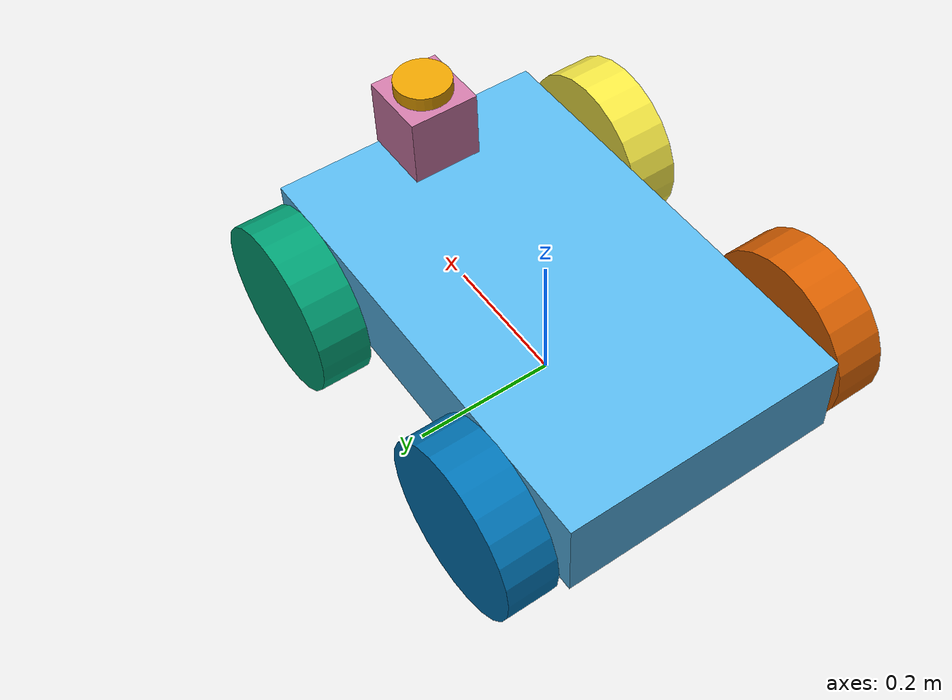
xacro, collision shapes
<?xml version='1.0'?>

<robot name="avular_origin_one" xmlns:xacro="http://ros.org/wiki/xacro" xmlns:ignition="http://sdformat.org/schemas/root.xsd">

  <xacro:arg name="drive_configuration" default="skid_steer_drive"/>
  <xacro:arg name="robot_namespace" default="robot"/>

  <xacro:property name="var" value="$(arg drive_configuration)"/>
  <xacro:property name="ns" value="$(arg robot_namespace)"/>
  <xacro:if value="${var == 'skid_steer_drive'}">
    <xacro:property name="trackWidth" value="0.500"/>
    <xacro:property name="wheelbase" value="0.410"/>
    <xacro:property name="wheelRadius" value="0.120"/>
    <xacro:property name="groundClearance" value="0.064"/>
    <!-- wheelMeshFileA refer to the mesh file used to visualize front left & rear right wheel  -->
    <xacro:property name="wheelMeshFileA" value="package://origin_one_description/urdf/meshes/wheel.obj"/>
    <!-- wheelMeshFileB refer to the mesh file used to visualize front right & rear left wheel  -->
    <xacro:property name="wheelMeshFileB" value="package://origin_one_description/urdf/meshes/wheel.obj"/>
  </xacro:if>
  <xacro:if value="${var == 'big_skid_steer_drive'}">
    <xacro:property name="trackWidth" value="0.530"/>
    <xacro:property name="wheelbase" value="0.410"/>
    <xacro:property name="wheelRadius" value="0.165"/>
    <xacro:property name="groundClearance" value="0.109"/>
    <!-- wheelMeshFileA refer to the mesh file used to visualize front left & rear right wheel  -->
    <xacro:property name="wheelMeshFileA" value="package://origin_one_description/urdf/meshes/wheel_big.obj"/>
    <!-- wheelMeshFileB refer to the mesh file used to visualize front right & rear left wheel  -->
    <xacro:property name="wheelMeshFileB" value="package://origin_one_description/urdf/meshes/wheel_big.obj"/>
  </xacro:if>
  <xacro:if value="${var == 'elevated_skid_steer_drive'}">
    <xacro:property name="trackWidth" value="0.530"/>
    <xacro:property name="wheelbase" value="0.410"/>
    <xacro:property name="wheelRadius" value="0.165"/>
    <xacro:property name="groundClearance" value="0.109"/>
    <!-- wheelMeshFileA refer to the mesh file used to visualize front left & rear right wheel  -->
    <xacro:property name="wheelMeshFileA" value="package://origin_one_description/urdf/meshes/wheel_big.obj"/>
    <!-- wheelMeshFileB refer to the mesh file used to visualize front right & rear left wheel  -->
    <xacro:property name="wheelMeshFileB" value="package://origin_one_description/urdf/meshes/wheel_big.obj"/>
  </xacro:if>
  <xacro:if value="${var == 'mecanum_drive'}">
    <xacro:property name="trackWidth" value="0.475"/>
    <xacro:property name="wheelbase" value="0.410"/>
    <xacro:property name="wheelRadius" value="0.1015"/>
    <xacro:property name="groundClearance" value="0.0455"/>
    <!-- wheelMeshFileA refer to the mesh file used to visualize front left & rear right wheel  -->
    <xacro:property name="wheelMeshFileA" value="package://origin_one_description/urdf/meshes/wheel_mecanumA.obj"/>
    <!-- wheelMeshFileB refer to the mesh file used to visualize front right & rear left wheel  -->
    <xacro:property name="wheelMeshFileB" value="package://origin_one_description/urdf/meshes/wheel_mecanumB.obj"/>
  </xacro:if>

  <gazebo>
    <static>false</static>
    <!-- Sensors & NavSat system plugins are loaded at world level (baylands.world) -->
  </gazebo>

  <link name='base_link' />

  <link name='main_body'>
    <inertial>
      <mass value="21.0"/>
      <inertia ixx="0.4" ixy="0.0" ixz="0.0" iyy="0.77" iyz="0.0" izz="1.01"/>
    </inertial>
    <collision name='collision'>
      <origin xyz="0 0 0.07" rpy="0 0 0.0"/>
      <geometry>
        <box size=".65 .4 .125"/>
      </geometry>
    </collision>
    <visual name='visual'>
      <origin xyz="0 0 0" rpy="0 0 0.0"/>
      <geometry>
        <mesh filename="package://origin_one_description/urdf/meshes/body.obj"
          scale="0.001 0.001 0.001" />
      </geometry>
    </visual>
  </link>

  <link name="left_front_wheel">
    <inertial>
      <mass value="1"/>
      <inertia ixx="0.01" ixy="0.0" ixz="0.0" iyy="0.01" iyz="0.0" izz="0.01"/>
    </inertial>
    <collision>
      <origin xyz="0 0 0.0" rpy="0 0 0"/>
      <geometry>
        <cylinder length=".07" radius="${wheelRadius}"/>
      </geometry>
    </collision>
    <visual>
      <origin xyz="0.0 0.0 0.0" rpy="0.0 1.5707 0.0"/>
      <geometry>
        <mesh filename="${wheelMeshFileA}"
          scale="0.001 0.001 0.001" />
      </geometry>
    </visual>
  </link>
  <gazebo reference="left_front_wheel">
    <collision>
      <surface>
        <friction>
          <xacro:if value="${var == 'skid_steer_drive'}">
            <ode>
              <mu>1</mu>
              <mu2>1</mu2>
              <slip1>0.001</slip1>
              <slip2>0</slip2>
              <fdir1>0 0 1</fdir1>
            </ode>
          </xacro:if>
          <xacro:if value="${var == 'mecanum_drive'}">
            <ode>
              <mu>1</mu>
              <mu2>0</mu2>
              <fdir1 ignition:expressed_in="base_link">1 -1 0</fdir1>
            </ode>
          </xacro:if>
          <xacro:if value="${var == 'big_skid_steer_drive'}">
            <ode>
              <mu>1</mu>
              <mu2>1</mu2>
              <slip1>0.001</slip1>
              <slip2>0</slip2>
              <fdir1>0 0 1</fdir1>
            </ode>
          </xacro:if>
          <xacro:if value="${var == 'elevated_skid_steer_drive'}">
            <ode>
              <mu>1</mu>
              <mu2>1</mu2>
              <slip1>0.001</slip1>
              <slip2>0</slip2>
              <fdir1>0 0 1</fdir1>
            </ode>
          </xacro:if>
          <bullet>
            <friction>1</friction>
            <friction2>1</friction2>
            <rolling_friction>0.1</rolling_friction>
          </bullet>
        </friction>
      </surface>
    </collision>
  </gazebo>

  <link name="right_front_wheel">
    <inertial>
      <mass value="1"/>
      <inertia ixx="0.01" ixy="0.0" ixz="0.0" iyy="0.01" iyz="0.0" izz="0.01"/>
    </inertial>
    <collision>
      <origin xyz="0 0 0.0" rpy="0 0 0"/>
      <geometry>
        <cylinder length=".07" radius="${wheelRadius}"/>
      </geometry>
    </collision>
    <visual>
      <origin xyz="0.0 0.0 0.0" rpy="0.0 -1.5707 0.0"/>
      <geometry>
        <mesh filename="${wheelMeshFileB}"
          scale="0.001 0.001 0.001" />
      </geometry>
    </visual>
  </link>
  <gazebo reference="right_front_wheel">
    <collision>
      <surface>
        <friction>
          <xacro:if value="${var == 'skid_steer_drive'}">
            <ode>
              <mu>1</mu>
              <mu2>1</mu2>
              <slip1>0.001</slip1>
              <slip2>0</slip2>
              <fdir1>0 0 1</fdir1>
            </ode>
          </xacro:if>
          <xacro:if value="${var == 'mecanum_drive'}">
            <ode>
              <mu>1</mu>
              <mu2>0</mu2>
              <fdir1 ignition:expressed_in="base_link">1 1 0</fdir1>
            </ode>
          </xacro:if>
          <xacro:if value="${var == 'big_skid_steer_drive'}">
            <ode>
              <mu>1</mu>
              <mu2>1</mu2>
              <slip1>0.001</slip1>
              <slip2>0</slip2>
              <fdir1>0 0 1</fdir1>
            </ode>
          </xacro:if>
          <xacro:if value="${var == 'elevated_skid_steer_drive'}">
            <ode>
              <mu>1</mu>
              <mu2>1</mu2>
              <slip1>0.001</slip1>
              <slip2>0</slip2>
              <fdir1>0 0 1</fdir1>
            </ode>
          </xacro:if>
          <bullet>
            <friction>1</friction>
            <friction2>1</friction2>
            <rolling_friction>0.1</rolling_friction>
          </bullet>
        </friction>
      </surface>
    </collision>
  </gazebo>

  <link name="left_rear_wheel">
    <inertial>
      <mass value="1"/>
      <inertia ixx="0.01" ixy="0.0" ixz="0.0" iyy="0.01" iyz="0.0" izz="0.01"/>
    </inertial>
    <collision>
      <origin xyz="0 0 0.0" rpy="0 0 0"/>
      <geometry>
        <cylinder length=".07" radius="${wheelRadius}"/>
      </geometry>
    </collision>
    <visual>
      <origin xyz="0.0 0.0 0.0" rpy="0.0 1.5707 0.0"/>
      <geometry>
        <mesh filename="${wheelMeshFileB}"
          scale="0.001 0.001 0.001" />
      </geometry>
    </visual>
  </link>
  <gazebo reference="left_rear_wheel">
    <collision>
      <surface>
        <friction>
          <xacro:if value="${var == 'skid_steer_drive'}">
            <ode>
              <mu>1</mu>
              <mu2>1</mu2>
              <slip1>0.001</slip1>
              <slip2>0</slip2>
              <fdir1>0 0 1</fdir1>
            </ode>
          </xacro:if>
          <xacro:if value="${var == 'mecanum_drive'}">
            <ode>
              <mu>1</mu>
              <mu2>0</mu2>
              <fdir1 ignition:expressed_in="base_link">1 1 0</fdir1>
            </ode>
          </xacro:if>
          <xacro:if value="${var == 'big_skid_steer_drive'}">
            <ode>
              <mu>1</mu>
              <mu2>1</mu2>
              <slip1>0.001</slip1>
              <slip2>0</slip2>
              <fdir1>0 0 1</fdir1>
            </ode>
          </xacro:if>
          <xacro:if value="${var == 'elevated_skid_steer_drive'}">
            <ode>
              <mu>1</mu>
              <mu2>1</mu2>
              <slip1>0.001</slip1>
              <slip2>0</slip2>
              <fdir1>0 0 1</fdir1>
            </ode>
          </xacro:if>
          <bullet>
            <friction>1</friction>
            <friction2>1</friction2>
            <rolling_friction>0.1</rolling_friction>
          </bullet>
        </friction>
      </surface>
    </collision>
  </gazebo>

  <link name="right_rear_wheel">
    <inertial>
      <mass value="1"/>
      <inertia ixx="0.01" ixy="0.0" ixz="0.0" iyy="0.01" iyz="0.0" izz="0.01"/>
    </inertial>
    <collision>
      <origin xyz="0 0 0.0" rpy="0 0 0"/>
      <geometry>
        <cylinder length=".07" radius="${wheelRadius}"/>
      </geometry>
    </collision>
    <visual>
      <origin xyz="0.0 0.0 0.0" rpy="0.0 -1.5707 0.0"/>
      <geometry>
        <mesh filename="${wheelMeshFileA}"
          scale="0.001 0.001 0.001" />
      </geometry>
    </visual>
  </link>
  <gazebo reference="right_rear_wheel">
    <collision>
      <surface>
        <friction>
          <xacro:if value="${var == 'skid_steer_drive'}">
            <ode>
              <mu>1</mu>
              <mu2>1</mu2>
              <slip1>0.001</slip1>
              <slip2>0</slip2>
              <fdir1>0 0 1</fdir1>
            </ode>
          </xacro:if>
          <xacro:if value="${var == 'mecanum_drive'}">
            <ode>
              <mu>1</mu>
              <mu2>0</mu2>
              <fdir1 ignition:expressed_in="base_link">1 -1 0</fdir1>
            </ode>
          </xacro:if>
          <xacro:if value="${var == 'big_skid_steer_drive'}">
            <ode>
              <mu>1</mu>
              <mu2>1</mu2>
              <slip1>0.001</slip1>
              <slip2>0</slip2>
              <fdir1>0 0 1</fdir1>
            </ode>
          </xacro:if>
          <xacro:if value="${var == 'elevated_skid_steer_drive'}">
            <ode>
              <mu>1</mu>
              <mu2>1</mu2>
              <slip1>0.001</slip1>
              <slip2>0</slip2>
              <fdir1>0 0 1</fdir1>
            </ode>
          </xacro:if>
          <bullet>
            <friction>1</friction>
            <friction2>1</friction2>
            <rolling_friction>0.1</rolling_friction>
          </bullet>
        </friction>
      </surface>
    </collision>
  </gazebo>

  <link name="ouster_base">
    <inertial>
      <mass value="1"/>
      <inertia ixx="0.001" ixy="0.0" ixz="0.0" iyy="0.001" iyz="0.0" izz="0.001"/>
    </inertial>
    <visual name="visual">
      <geometry>
        <mesh filename="package://origin_one_description/urdf/meshes/ouster.obj"
          scale="0.001 0.001 0.001" />
      </geometry>
    </visual>
    <collision name="collision-base">
      <origin xyz="0.0 0.0 0.0" rpy="0.0 0.0 0.0"/>
      <geometry>
        <box size="0.1 0.1 0.1"/>
      </geometry>
    </collision>
  </link>

  <link name="os_sensor" />

  <link name="lidar_link_gazebo">
    <inertial>
      <mass value="0.1"/>
      <inertia ixx="0.001" ixy="0.0" ixz="0.0" iyy="0.001" iyz="0.0" izz="0.001"/>
    </inertial>
    <collision name="collision-base">
      <origin xyz="0 0 0.0" rpy="0 0 0"/>
      <geometry>
        <cylinder length="0.07" radius="0.04"/>
      </geometry>
    </collision>
  </link>

  <gazebo reference="lidar_link_gazebo">
    <sensor name='ouster_lidar' type='gpu_lidar'>
      <topic>/model/${ns}/lidar</topic>
      <gz_frame_id>${ns}/lidar_link_gazebo</gz_frame_id>
      <!-- 20 Hz update rate (real Ouster OS1 supports 10/20 Hz). -->
      <update_rate>20</update_rate>
      <lidar>
        <scan>
          <horizontal>
            <samples>1024</samples>
            <resolution>1.0</resolution>
            <min_angle>-3.1415926</min_angle>
            <max_angle>3.1415926</max_angle>
          </horizontal>
          <vertical>
            <samples>64</samples>
            <resolution>1</resolution>
            <min_angle>-0.70</min_angle>
            <max_angle>0.087</max_angle>
          </vertical>
        </scan>
        <range>
          <min>0.08</min>
          <max>100.0</max>
          <resolution>0.01</resolution>
        </range>
        <noise type="gaussian">
          <mean>0.0</mean>
          <stddev>0.01</stddev>
        </noise>
      </lidar>
      <alwaysOn>1</alwaysOn>
      <!-- visualize: false saves GUI-side render budget; the cloud is still
           inspectable in RViz via /{name}/lidar/points. -->
      <visualize>false</visualize>
    </sensor>
  </gazebo>

  <link name="camera_link">
    <inertial>
      <mass value="0.035"/>
      <inertia ixx="0.001" ixy="0" ixz="0.0" iyy="0.001" iyz="0.0" izz="0.001"/>
    </inertial>
    <collision name="collision">
      <origin xyz="0 0.047 0" rpy="0 0 0"/>
      <geometry>
        <box size="0.008 0.13 0.022"/>
      </geometry>
    </collision>
  </link>

  <gazebo reference="camera_link">
    <sensor name="realsense_d435" type="rgbd_camera">
      <gz_frame_id>${ns}/camera_link</gz_frame_id>
      <topic>/model/${ns}/camera</topic>
      <update_rate>6</update_rate>
      <camera name="camera">
        <horizontal_fov>1.0472</horizontal_fov>
        <lens>
          <intrinsics>
            <!-- fx = fy = width / ( 2 * tan (hfov / 2 ) ) -->
            <fx>554.254691</fx>
            <fy>554.254691</fy>
            <!-- cx = ( width + 1 ) / 2 -->
            <cx>320.5</cx>
            <!-- cy = ( height + 1 ) / 2 -->
            <cy>240.5</cy>
            <s>0</s>
          </intrinsics>
        </lens>
        <distortion>
          <k1>0.0</k1>
          <k2>0.0</k2>
          <k3>0.0</k3>
          <p1>0.0</p1>
          <p2>0.0</p2>
          <center>0.5 0.5</center>
        </distortion>
        <image>
          <width>640</width>
          <height>480</height>
          <format>R8G8B8</format>
        </image>
        <clip>
          <near>0.02</near>
          <far>300</far>
        </clip>
        <depth_camera>
          <clip>
            <near>0.1</near>
            <far>10</far>
          </clip>
        </depth_camera>
        <noise type="gaussian">
          <mean>0</mean>
          <stddev>0.007</stddev>
        </noise>
      </camera>
    </sensor>
  </gazebo>

  <link name="gnss_link">
    <visual name="visual_pole">
      <geometry>
        <mesh filename="package://origin_one_description/urdf/meshes/antenna.obj"
          scale="0.001 0.001 0.001" />
      </geometry>
      <origin xyz="0.0 0 0.0" rpy="0 0 0"/>
      <geometry>
        <box size="0.03 0.03 0.1"/>
      </geometry>
    </visual>
  </link>

  <gazebo reference="gnss_link">
    <sensor name="navsat" type="navsat">
      <gz_frame_id>${ns}/gnss_link</gz_frame_id>
      <always_on>1</always_on>
      <update_rate>10</update_rate>
      <topic>/model/${ns}/navsat</topic>
      <!-- Obtained from http://sdformat.org/spec?ver=1.11&elem=sensor#sensor_gps -->
      <gps>
        <position_sensing>
          <horizontal>
            <!-- Noise in degrees: https://github.com/gazebosim/gz-sensors/issues/325 -->
            <noise type="gaussian">
              <mean>0.0</mean>
              <stddev>0.000</stddev>
            </noise>
          </horizontal>
          <vertical>
            <!-- Noise in degrees -->
            <noise type="gaussian">
              <mean>0.0</mean>
              <stddev>0.0001</stddev>
            </noise>
          </vertical>
        </position_sensing>
      </gps>
    </sensor>
  </gazebo>

  <link name="us_left_front_link">
  </link>

  <link name="us_center_front_link">
  </link>

  <link name="us_right_front_link">
  </link>

  <link name="us_left_rear_link">
  </link>

  <link name="us_center_rear_link">
  </link>

  <link name="us_right_rear_link">
  </link>

  <link name="imu_link">
  </link>

  <gazebo reference="imu_link">
    <sensor name="imu_sensor" type="imu">
      <gz_frame_id>${ns}/imu_link</gz_frame_id>
      <always_on>1</always_on>
      <update_rate>100</update_rate>
      <topic>/model/${ns}/imu</topic>
      <visualize>false</visualize>
      <imu>
        <angular_velocity>
          <x><noise type="gaussian"><mean>0.0</mean><stddev>0.0002</stddev></noise></x>
          <y><noise type="gaussian"><mean>0.0</mean><stddev>0.0002</stddev></noise></y>
          <z><noise type="gaussian"><mean>0.0</mean><stddev>0.0002</stddev></noise></z>
        </angular_velocity>
        <linear_acceleration>
          <x><noise type="gaussian"><mean>0.0</mean><stddev>0.017</stddev></noise></x>
          <y><noise type="gaussian"><mean>0.0</mean><stddev>0.017</stddev></noise></y>
          <z><noise type="gaussian"><mean>0.0</mean><stddev>0.017</stddev></noise></z>
        </linear_acceleration>
      </imu>
    </sensor>
  </gazebo>

  <joint type="fixed" name="base_body">
    <origin xyz="0.0 0 ${groundClearance}" rpy="0 0 0"/>
    <child link="main_body" />
    <parent link="base_link"/>
  </joint>

  <joint type="continuous" name="main_body_left_front_wheel">
    <origin xyz="${wheelbase/2} ${trackWidth/2} 0.056" rpy="-1.5707 0 0"/>
    <child link="left_front_wheel" />
    <parent link="main_body"/>
    <axis xyz="0 0 1"/>
    <limit effort="100000.0" velocity="10"/>
    <dynamics damping="0.5" friction="0.3"/>
  </joint>

  <joint type="continuous" name="main_body_right_front_wheel">
    <origin xyz="${wheelbase/2} ${-trackWidth/2} 0.056" rpy="-1.5707 0 0"/>
    <child link="right_front_wheel" />
    <parent link="main_body"/>
    <axis xyz="0 0 1"/>
    <limit effort="100000.0" velocity="10"/>
    <dynamics damping="0.5" friction="0.3"/>
  </joint>

  <joint type="continuous" name="main_body_left_rear_wheel">
    <origin xyz="${-wheelbase/2} ${trackWidth/2} 0.056" rpy="-1.5707 0 0"/>
    <child link="left_rear_wheel" />
    <parent link="main_body"/>
    <axis xyz="0 0 1"/>
    <limit effort="100000.0" velocity="10"/>
    <dynamics damping="0.5" friction="0.3"/>
  </joint>

  <joint type="continuous" name="main_body_right_rear_wheel">
    <origin xyz="${-wheelbase/2} ${-trackWidth/2} 0.056" rpy="-1.5707 0 0"/>
    <child link="right_rear_wheel" />
    <parent link="main_body"/>
    <axis xyz="0 0 1"/>
    <limit effort="100000.0" velocity="10"/>
    <dynamics damping="0.5" friction="0.3"/>
  </joint>

  <joint type="fixed" name="ouster_platform_joint">
    <origin xyz="0.272 0 0.189" rpy="0 0 0"/>
    <child link="ouster_base" />
    <parent link="main_body"/>
  </joint>

  <joint name="ouster_orientation_joint" type="fixed">
    <parent link="ouster_base" />
    <child link="os_sensor" />
    <origin xyz="0 0 0" rpy="0 0 0" />
  </joint>

  <joint type="fixed" name="lidar_joint_gazebo">
    <origin xyz="0 0 0.035" rpy="0 0 0"/>
    <child link="lidar_link_gazebo" />
    <parent link="ouster_base"/>
  </joint>

  <joint type="fixed" name="realsense_joint">
    <origin xyz="0.3156 0.017 0.096" rpy="0 0 0"/>
    <child link="camera_link"/>
    <parent link="main_body"/>
  </joint>

  <joint type="fixed" name="gnss_joint">
    <origin xyz="-0.0505 0 0.212" rpy="0 0 0"/>
    <child link="gnss_link"/>
    <parent link="main_body"/>
  </joint>

  <joint type="fixed" name="us_left_front_joint">
    <origin xyz="0.314 0.119 0.072" rpy="0 0 -0.7854"/>
    <child link="us_left_front_link"/>
    <parent link="main_body"/>
  </joint>

  <joint type="fixed" name="us_center_front_joint">
    <origin xyz="0.322 0 0.063" rpy="0 0 0"/>
    <child link="us_center_front_link"/>
    <parent link="main_body"/>
  </joint>

  <joint type="fixed" name="us_right_front_joint">
    <origin xyz="0.314 -0.119 0.072" rpy="0 0 0.7854"/>
    <child link="us_right_front_link"/>
    <parent link="main_body"/>
  </joint>

  <joint type="fixed" name="us_left_rear_joint">
    <origin xyz="-0.314 0.119 0.072" rpy="0 0 -2.357"/>
    <child link="us_left_rear_link"/>
    <parent link="main_body"/>
  </joint>

  <joint type="fixed" name="us_center_rear_joint">
    <origin xyz="-0.322 0 0.063" rpy="0 0 0"/>
    <child link="us_center_rear_link"/>
    <parent link="main_body"/>
  </joint>

  <joint type="fixed" name="us_right_rear_joint">
    <origin xyz="-0.314 -0.119 0.072" rpy="0 0 2.357"/>
    <child link="us_right_rear_link"/>
    <parent link="main_body"/>
  </joint>

  <joint type="fixed" name="imu_joint">
    <origin xyz="-0.1266 0.0749 0.066" rpy="0 0 0"/>
    <child link="imu_link"/>
    <parent link="main_body"/>
  </joint>

  <gazebo>
    <plugin filename="gz-sim-joint-state-publisher-system" name="ignition::gazebo::systems::JointStatePublisher">
      <topic>/model/${ns}/joint_state</topic>
    </plugin>
    <!-- Controls the differential drive robot -->
    <xacro:if value="${var == 'skid_steer_drive'}">
      <plugin filename="gz-sim-diff-drive-system" name="gz::sim::systems::DiffDrive">
        <left_joint>main_body_left_front_wheel</left_joint>
        <left_joint>main_body_left_rear_wheel</left_joint>
        <right_joint>main_body_right_front_wheel</right_joint>
        <right_joint>main_body_right_rear_wheel</right_joint>
        <wheel_separation>0.45</wheel_separation>
        <wheel_radius>0.120</wheel_radius>
        <max_linear_acceleration>5.5</max_linear_acceleration>
        <min_linear_acceleration>-5.5</min_linear_acceleration>
        <max_angular_acceleration>6</max_angular_acceleration>
        <min_angular_acceleration>-6</min_angular_acceleration>
        <max_linear_velocity>1.5</max_linear_velocity>
        <min_linear_velocity>-1.5</min_linear_velocity>
        <max_angular_velocity>2</max_angular_velocity>
        <min_angular_velocity>-2</min_angular_velocity>
        <topic>/model/${ns}/cmd_vel</topic>
        <odom_topic>/model/${ns}/odometry</odom_topic>
        <tf_topic>/model/${ns}/tf</tf_topic>
        <frame_id>${ns}/odom</frame_id>
        <child_frame_id>${ns}/base_link</child_frame_id>
      </plugin>
    </xacro:if>

    <!-- controls big skid steer drive -->
    <xacro:if value="${var == 'big_skid_steer_drive'}">
      <plugin filename="gz-sim-diff-drive-system" name="gz::sim::systems::DiffDrive">
        <left_joint>main_body_left_front_wheel</left_joint>
        <left_joint>main_body_left_rear_wheel</left_joint>
        <right_joint>main_body_right_front_wheel</right_joint>
        <right_joint>main_body_right_rear_wheel</right_joint>
        <wheel_separation>0.45</wheel_separation>
        <wheel_radius>0.165</wheel_radius>
        <max_linear_acceleration>5.5</max_linear_acceleration>
        <min_linear_acceleration>-5.5</min_linear_acceleration>
        <max_angular_acceleration>6</max_angular_acceleration>
        <min_angular_acceleration>-6</min_angular_acceleration>
        <max_linear_velocity>2.5</max_linear_velocity>
        <min_linear_velocity>-2.5</min_linear_velocity>
        <max_angular_velocity>3</max_angular_velocity>
        <min_angular_velocity>-3</min_angular_velocity>
        <topic>/model/${ns}/cmd_vel</topic>
        <odom_topic>/model/${ns}/odometry</odom_topic>
        <tf_topic>/model/${ns}/tf</tf_topic>
        <frame_id>${ns}/odom</frame_id>
        <child_frame_id>${ns}/base_link</child_frame_id>
      </plugin>
    </xacro:if>

    <!-- controls big skid steer drive -->
    <xacro:if value="${var == 'elevated_skid_steer_drive'}">
      <plugin filename="gz-sim-diff-drive-system" name="gz::sim::systems::DiffDrive">
        <left_joint>main_body_left_front_wheel</left_joint>
        <left_joint>main_body_left_rear_wheel</left_joint>
        <right_joint>main_body_right_front_wheel</right_joint>
        <right_joint>main_body_right_rear_wheel</right_joint>
        <wheel_separation>0.45</wheel_separation>
        <wheel_radius>0.165</wheel_radius>
        <max_linear_acceleration>5.5</max_linear_acceleration>
        <min_linear_acceleration>-5.5</min_linear_acceleration>
        <max_angular_acceleration>6</max_angular_acceleration>
        <min_angular_acceleration>-6</min_angular_acceleration>
        <max_linear_velocity>2.5</max_linear_velocity>
        <min_linear_velocity>-2.5</min_linear_velocity>
        <max_angular_velocity>3</max_angular_velocity>
        <min_angular_velocity>-3</min_angular_velocity>
        <topic>/model/${ns}/cmd_vel</topic>
        <odom_topic>/model/${ns}/odometry</odom_topic>
        <tf_topic>/model/${ns}/tf</tf_topic>
        <frame_id>${ns}/odom</frame_id>
        <child_frame_id>${ns}/base_link</child_frame_id>
      </plugin>
    </xacro:if>

    <!-- Controls the mecanum drive robot -->
    <xacro:if value="${var == 'mecanum_drive'}">
      <plugin
        filename="gz-sim-mecanum-drive-system" name="ignition::gazebo::systems::MecanumDrive">
        <front_left_joint>main_body_left_front_wheel</front_left_joint>
        <front_right_joint>main_body_right_front_wheel</front_right_joint>
        <back_left_joint>main_body_left_rear_wheel</back_left_joint>
        <back_right_joint>main_body_right_rear_wheel</back_right_joint>
        <wheel_separation>${trackWidth}</wheel_separation>
        <wheelbase>${wheelbase}</wheelbase>
        <wheel_radius>${wheelRadius}</wheel_radius>
        <min_acceleration>-5</min_acceleration>
        <max_acceleration>5</max_acceleration>
        <topic>/model/${ns}/cmd_vel</topic>
      </plugin>

    <!-- Seperate plugin for odometry is used because mecanum drive plug does not have this feature-->
    <!-- see https://github.com/gazebosim/gz-sim/pull/2297 for more information -->
      <plugin
        filename="gz-sim-odometry-publisher-system" name="ignition::gazebo::systems::OdometryPublisher">
        <odom_topic>/model/${ns}/odometry</odom_topic>
        <tf_topic>/model/${ns}/tf</tf_topic>
        <odom_frame>${ns}/odom</odom_frame>
        <robot_base_frame>${ns}/base_link</robot_base_frame>
      </plugin>

    </xacro:if>

  </gazebo>

</robot>
